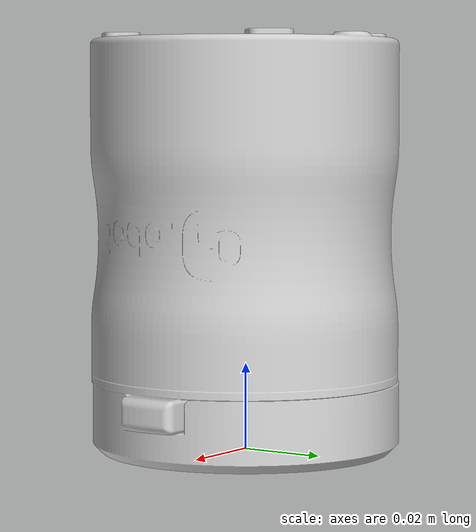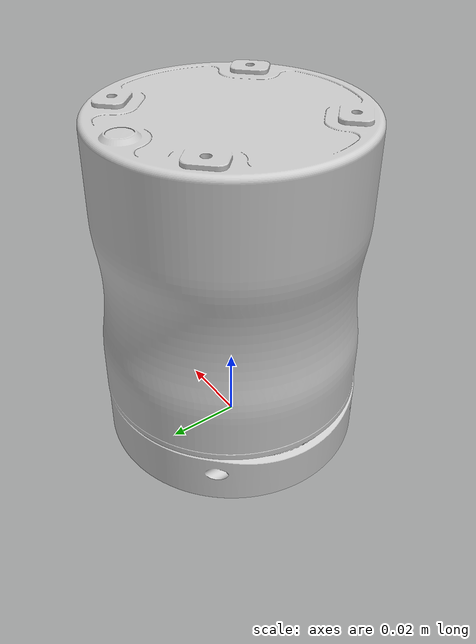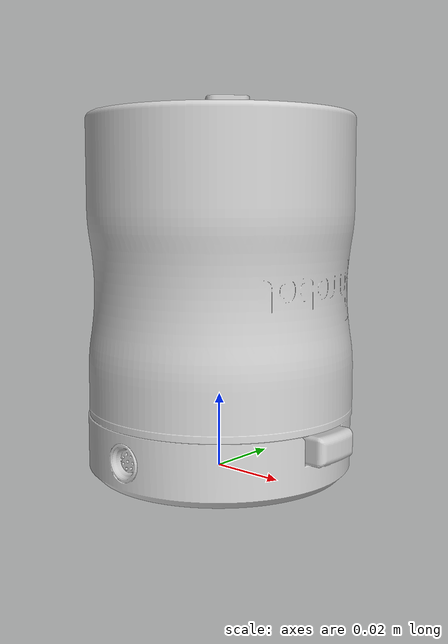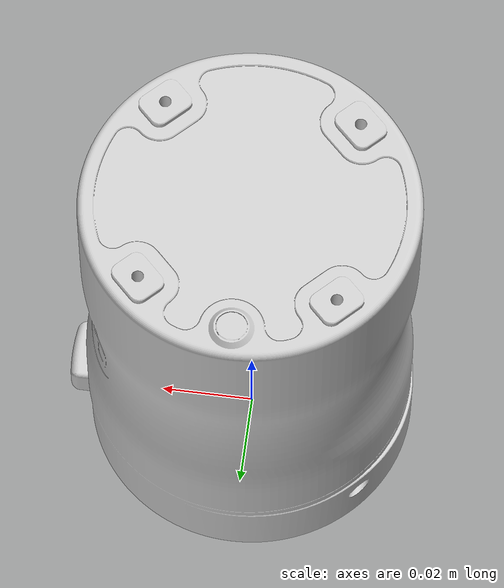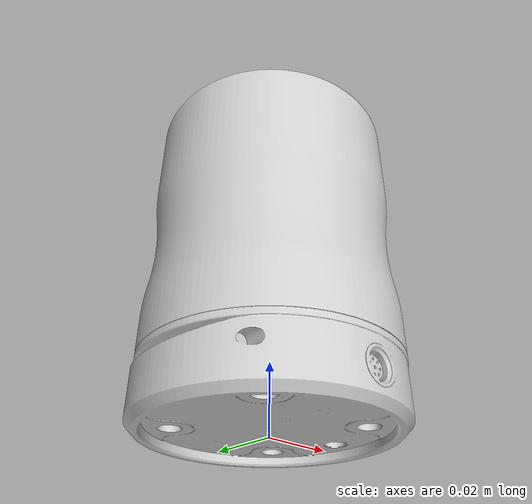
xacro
<?xml version="1.0"?>
<robot name="onrobot_mg10_model" xmlns:xacro="http://ros.org/wiki/xacro">
    <link name="onrobot_mg10_base_link">
      <inertial>
        <origin xyz="0.0 0.0 0.0" rpy="0 0 0" />
        <mass value="0.6" />
        <inertia ixx="1.0E-03" ixy="1.0E-06" ixz="1.0E-06" iyy="1.0E-03" iyz="1.0E-06" izz="1.0E-03" />
      </inertial>
      <visual>
        <origin xyz="0 0 0" rpy="0 0 0" />
        <geometry>
          <mesh filename="package://onrobot_mg_description/meshes/mg10/visual/base_link.stl" scale="0.001 0.001 0.001"/>
        </geometry>
        <material name="">
          <color rgba="0.8 0.8 0.8 1" />
        </material>
      </visual>
      <collision>
        <origin xyz="0 0 0" rpy="0 0 0" />
        <geometry>
          <mesh filename="package://onrobot_mg_description/meshes/mg10/collision/base_link.stl" scale="0.001 0.001 0.001"/>
        </geometry>
      </collision>
    </link>
</robot>
